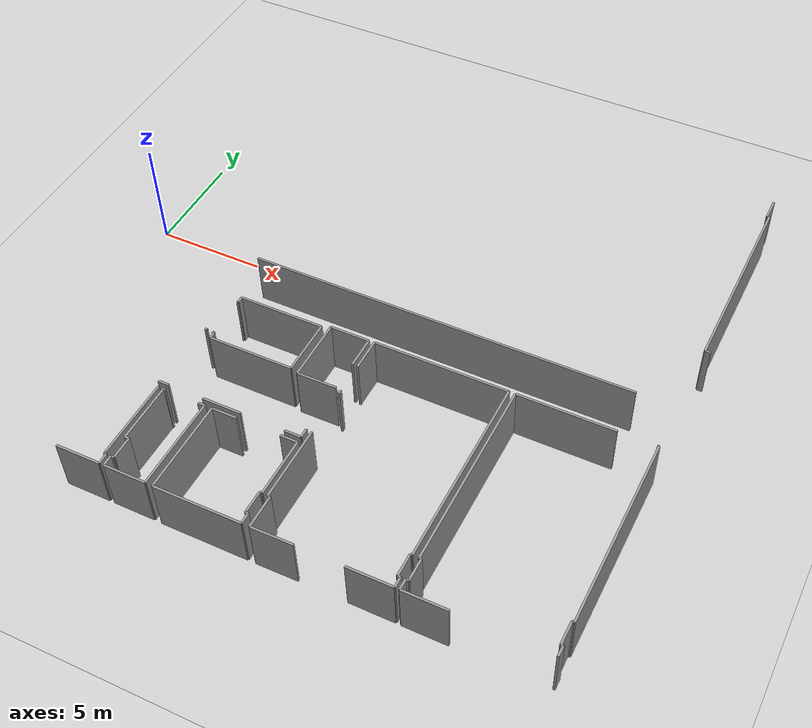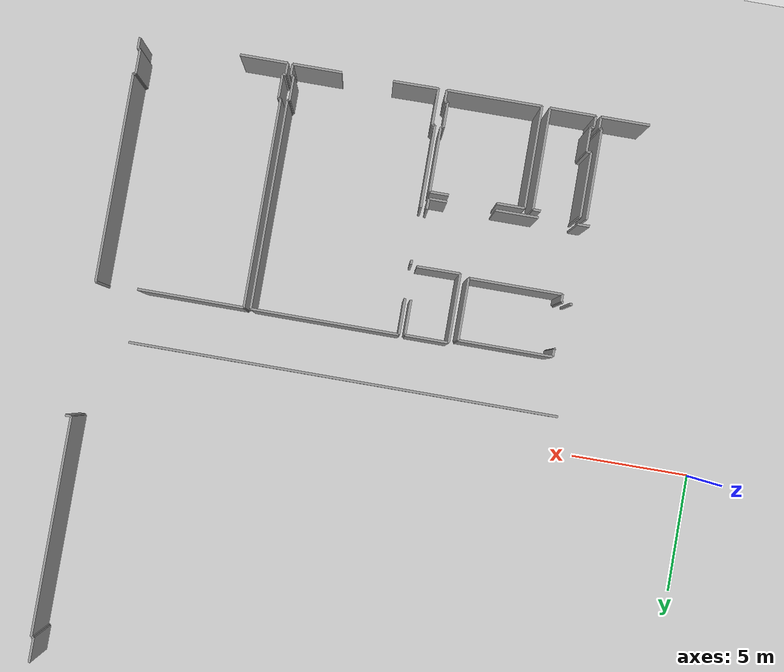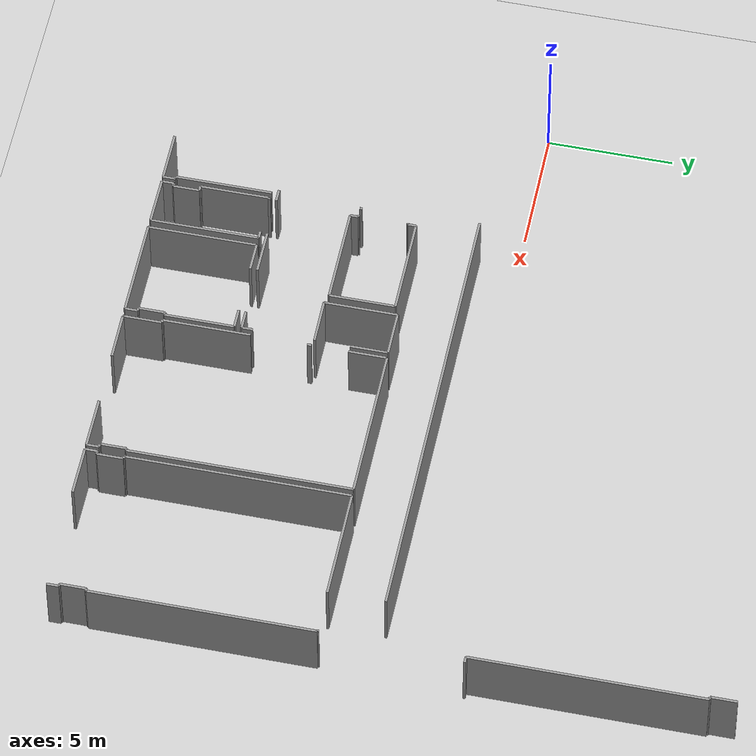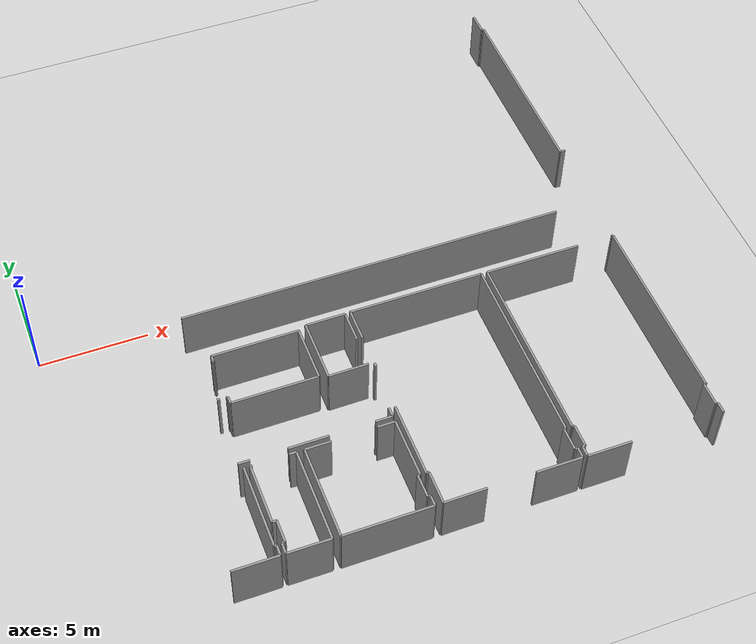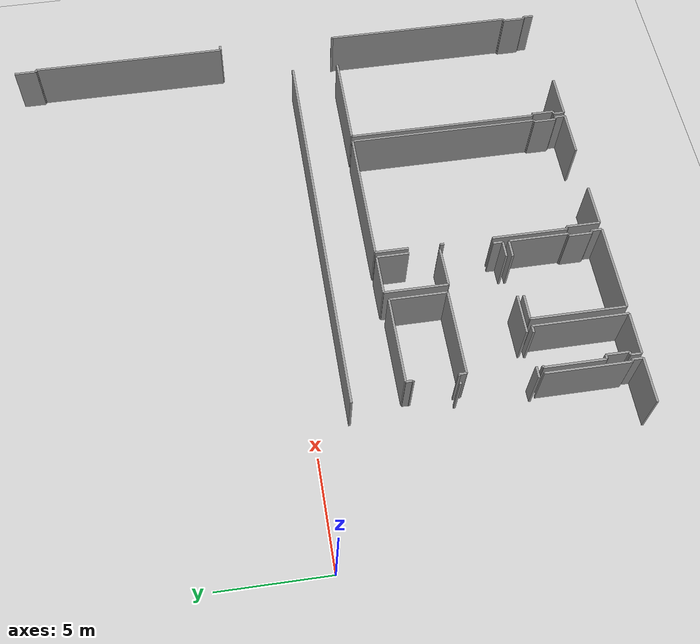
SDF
<sdf version="1.6">
 <world name="default">
  <model name="ground_plane">
   <static>1</static>
   <link name="link">
    <collision name="collision">
     <geometry><plane><normal>0 0 1</normal><size>100 100</size></plane></geometry>
     <surface><friction><ode><mu>100</mu><mu2>50</mu2></ode></friction></surface>
    </collision>
    <visual name="visual">
     <cast_shadows>0</cast_shadows>
     <geometry><plane><normal>0 0 1</normal><size>100 100</size></plane></geometry>
     <material>
      <script><uri>file://media/materials/scripts/gazebo.material</uri><name>Gazebo/Grey</name></script>
     </material>
    </visual>
   </link>
  </model>
  <model name="0510040941_A-40">
   <static>1</static>
   <link name="Wall_170">
    <collision name="Wall_170_Collision">
     <geometry><box><size>1.04735149943 0.1 2.5</size></box></geometry>
     <pose>0.523675749716 0 1.25 0 0 0</pose>
    </collision>
    <visual name="Wall_170_Visual">
     <pose>0.523675749716 0 1.25 0 0 0</pose>
     <geometry><box><size>1.04735149943 0.1 2.5</size></box></geometry>
     <material>
      <script><uri>file://media/materials/scripts/gazebo.material</uri><name>Gazebo/Grey</name></script>
      <ambient>1 1 1 1</ambient>
     </material>
    </visual>
    <pose>84.2989860045 -0.511753850837 0 0 0 -1.57079632679</pose>
   </link>
   <link name="Wall_171">
    <collision name="Wall_171_Collision">
     <geometry><box><size>0.104887344397 0.1 2.5</size></box></geometry>
     <pose>0.0524436721985 0 1.25 0 0 0</pose>
    </collision>
    <visual name="Wall_171_Visual">
     <pose>0.0524436721985 0 1.25 0 0 0</pose>
     <geometry><box><size>0.104887344397 0.1 2.5</size></box></geometry>
     <material>
      <script><uri>file://media/materials/scripts/gazebo.material</uri><name>Gazebo/Grey</name></script>
      <ambient>1 1 1 1</ambient>
     </material>
    </visual>
    <pose>84.2989860045 -1.55910535027 0 0 0 0.0</pose>
   </link>
   <link name="Wall_172">
    <collision name="Wall_172_Collision">
     <geometry><box><size>9.14067206534 0.1 2.5</size></box></geometry>
     <pose>4.57033603267 0 1.25 0 0 0</pose>
    </collision>
    <visual name="Wall_172_Visual">
     <pose>4.57033603267 0 1.25 0 0 0</pose>
     <geometry><box><size>9.14067206534 0.1 2.5</size></box></geometry>
     <material>
      <script><uri>file://media/materials/scripts/gazebo.material</uri><name>Gazebo/Grey</name></script>
      <ambient>1 1 1 1</ambient>
     </material>
    </visual>
    <pose>84.4038733488 -1.55910535027 0 0 0 -1.57079632679</pose>
   </link>
   <link name="Wall_173">
    <collision name="Wall_173_Collision">
     <geometry><box><size>0.247823302239 0.1 2.5</size></box></geometry>
     <pose>0.12391165112 0 1.25 0 0 0</pose>
    </collision>
    <visual name="Wall_173_Visual">
     <pose>0.12391165112 0 1.25 0 0 0</pose>
     <geometry><box><size>0.247823302239 0.1 2.5</size></box></geometry>
     <material>
      <script><uri>file://media/materials/scripts/gazebo.material</uri><name>Gazebo/Grey</name></script>
      <ambient>1 1 1 1</ambient>
     </material>
    </visual>
    <pose>84.4038733488 -10.6997774156 0 0 0 0.0</pose>
   </link>
   <link name="Wall_181">
    <collision name="Wall_181_Collision">
     <geometry><box><size>17.9531114254 0.1 2.5</size></box></geometry>
     <pose>8.97655571268 0 1.25 0 0 0</pose>
    </collision>
    <visual name="Wall_181_Visual">
     <pose>8.97655571268 0 1.25 0 0 0</pose>
     <geometry><box><size>17.9531114254 0.1 2.5</size></box></geometry>
     <material>
      <script><uri>file://media/materials/scripts/gazebo.material</uri><name>Gazebo/Grey</name></script>
      <ambient>1 1 1 1</ambient>
     </material>
    </visual>
    <pose>82.6095007388 -14.1020844299 0 0 0 3.14159265359</pose>
   </link>
   <link name="Wall_193">
    <collision name="Wall_193_Collision">
     <geometry><box><size>0.117443386834 0.1 2.5</size></box></geometry>
     <pose>0.058721693417 0 1.25 0 0 0</pose>
    </collision>
    <visual name="Wall_193_Visual">
     <pose>0.058721693417 0 1.25 0 0 0</pose>
     <geometry><box><size>0.117443386834 0.1 2.5</size></box></geometry>
     <material>
      <script><uri>file://media/materials/scripts/gazebo.material</uri><name>Gazebo/Grey</name></script>
      <ambient>1 1 1 1</ambient>
     </material>
    </visual>
    <pose>64.9444173172 -18.7648151789 0 0 0 3.14159265359</pose>
   </link>
   <link name="Wall_196">
    <collision name="Wall_196_Collision">
     <geometry><box><size>0.441363915963 0.1 2.5</size></box></geometry>
     <pose>0.220681957982 0 1.25 0 0 0</pose>
    </collision>
    <visual name="Wall_196_Visual">
     <pose>0.220681957982 0 1.25 0 0 0</pose>
     <geometry><box><size>0.441363915963 0.1 2.5</size></box></geometry>
     <material>
      <script><uri>file://media/materials/scripts/gazebo.material</uri><name>Gazebo/Grey</name></script>
      <ambient>1 1 1 1</ambient>
     </material>
    </visual>
    <pose>71.4149645197 -21.6430659573 0 0 0 -1.57079632679</pose>
   </link>
   <link name="Wall_197">
    <collision name="Wall_197_Collision">
     <geometry><box><size>0.763255185709 0.1 2.5</size></box></geometry>
     <pose>0.381627592854 0 1.25 0 0 0</pose>
    </collision>
    <visual name="Wall_197_Visual">
     <pose>0.381627592854 0 1.25 0 0 0</pose>
     <geometry><box><size>0.763255185709 0.1 2.5</size></box></geometry>
     <material>
      <script><uri>file://media/materials/scripts/gazebo.material</uri><name>Gazebo/Grey</name></script>
      <ambient>1 1 1 1</ambient>
     </material>
    </visual>
    <pose>71.4149645197 -22.0844298732 0 0 0 3.14159265359</pose>
   </link>
   <link name="Wall_198">
    <collision name="Wall_198_Collision">
     <geometry><box><size>1.80122136049 0.1 2.5</size></box></geometry>
     <pose>0.900610680246 0 1.25 0 0 0</pose>
    </collision>
    <visual name="Wall_198_Visual">
     <pose>0.900610680246 0 1.25 0 0 0</pose>
     <geometry><box><size>1.80122136049 0.1 2.5</size></box></geometry>
     <material>
      <script><uri>file://media/materials/scripts/gazebo.material</uri><name>Gazebo/Grey</name></script>
      <ambient>1 1 1 1</ambient>
     </material>
    </visual>
    <pose>68.615093885 -22.0844298732 0 0 0 3.14159265359</pose>
   </link>
   <link name="Wall_199">
    <collision name="Wall_199_Collision">
     <geometry><box><size>0.507314845935 0.1 2.5</size></box></geometry>
     <pose>0.253657422967 0 1.25 0 0 0</pose>
    </collision>
    <visual name="Wall_199_Visual">
     <pose>0.253657422967 0 1.25 0 0 0</pose>
     <geometry><box><size>0.507314845935 0.1 2.5</size></box></geometry>
     <material>
      <script><uri>file://media/materials/scripts/gazebo.material</uri><name>Gazebo/Grey</name></script>
      <ambient>1 1 1 1</ambient>
     </material>
    </visual>
    <pose>65.1733431414 -22.0844298732 0 0 0 3.14159265359</pose>
   </link>
   <link name="Wall_205">
    <collision name="Wall_205_Collision">
     <geometry><box><size>0.3026133056 0.1 2.5</size></box></geometry>
     <pose>0.1513066528 0 1.25 0 0 0</pose>
    </collision>
    <visual name="Wall_205_Visual">
     <pose>0.1513066528 0 1.25 0 0 0</pose>
     <geometry><box><size>0.3026133056 0.1 2.5</size></box></geometry>
     <material>
      <script><uri>file://media/materials/scripts/gazebo.material</uri><name>Gazebo/Grey</name></script>
      <ambient>1 1 1 1</ambient>
     </material>
    </visual>
    <pose>65.2730305086 -16.8065798736 0 0 0 1.57079632679</pose>
   </link>
   <link name="Wall_206">
    <collision name="Wall_206_Collision">
     <geometry><box><size>3.95781677056 0.1 2.5</size></box></geometry>
     <pose>1.97890838528 0 1.25 0 0 0</pose>
    </collision>
    <visual name="Wall_206_Visual">
     <pose>1.97890838528 0 1.25 0 0 0</pose>
     <geometry><box><size>3.95781677056 0.1 2.5</size></box></geometry>
     <material>
      <script><uri>file://media/materials/scripts/gazebo.material</uri><name>Gazebo/Grey</name></script>
      <ambient>1 1 1 1</ambient>
     </material>
    </visual>
    <pose>65.2730305086 -16.503966568 0 0 0 0.0</pose>
   </link>
   <link name="Wall_207">
    <collision name="Wall_207_Collision">
     <geometry><box><size>2.60633002099 0.1 2.5</size></box></geometry>
     <pose>1.3031650105 0 1.25 0 0 0</pose>
    </collision>
    <visual name="Wall_207_Visual">
     <pose>1.3031650105 0 1.25 0 0 0</pose>
     <geometry><box><size>2.60633002099 0.1 2.5</size></box></geometry>
     <material>
      <script><uri>file://media/materials/scripts/gazebo.material</uri><name>Gazebo/Grey</name></script>
      <ambient>1 1 1 1</ambient>
     </material>
    </visual>
    <pose>69.2308472792 -16.503966568 0 0 0 -1.57079632679</pose>
   </link>
   <link name="Wall_208">
    <collision name="Wall_208_Collision">
     <geometry><box><size>3.93194371342 0.1 2.5</size></box></geometry>
     <pose>1.96597185671 0 1.25 0 0 0</pose>
    </collision>
    <visual name="Wall_208_Visual">
     <pose>1.96597185671 0 1.25 0 0 0</pose>
     <geometry><box><size>3.93194371342 0.1 2.5</size></box></geometry>
     <material>
      <script><uri>file://media/materials/scripts/gazebo.material</uri><name>Gazebo/Grey</name></script>
      <ambient>1 1 1 1</ambient>
     </material>
    </visual>
    <pose>69.2308472792 -19.1102965889 0 0 0 3.14159265359</pose>
   </link>
   <link name="Wall_209">
    <collision name="Wall_209_Collision">
     <geometry><box><size>0.316564463863 0.1 2.5</size></box></geometry>
     <pose>0.158282231932 0 1.25 0 0 0</pose>
    </collision>
    <visual name="Wall_209_Visual">
     <pose>0.158282231932 0 1.25 0 0 0</pose>
     <geometry><box><size>0.316564463863 0.1 2.5</size></box></geometry>
     <material>
      <script><uri>file://media/materials/scripts/gazebo.material</uri><name>Gazebo/Grey</name></script>
      <ambient>1 1 1 1</ambient>
     </material>
    </visual>
    <pose>65.2989035658 -19.1102965889 0 0 0 1.57079632679</pose>
   </link>
   <link name="Wall_210">
    <collision name="Wall_210_Collision">
     <geometry><box><size>0.0862435238089 0.1 2.5</size></box></geometry>
     <pose>0.0431217619045 0 1.25 0 0 0</pose>
    </collision>
    <visual name="Wall_210_Visual">
     <pose>0.0431217619045 0 1.25 0 0 0</pose>
     <geometry><box><size>0.0862435238089 0.1 2.5</size></box></geometry>
     <material>
      <script><uri>file://media/materials/scripts/gazebo.material</uri><name>Gazebo/Grey</name></script>
      <ambient>1 1 1 1</ambient>
     </material>
    </visual>
    <pose>65.2989035658 -18.7937321251 0 0 0 3.14159265359</pose>
   </link>
   <link name="Wall_211">
    <collision name="Wall_211_Collision">
     <geometry><box><size>0.0671038954753 0.1 2.5</size></box></geometry>
     <pose>0.0335519477377 0 1.25 0 0 0</pose>
    </collision>
    <visual name="Wall_211_Visual">
     <pose>0.0335519477377 0 1.25 0 0 0</pose>
     <geometry><box><size>0.0671038954753 0.1 2.5</size></box></geometry>
     <material>
      <script><uri>file://media/materials/scripts/gazebo.material</uri><name>Gazebo/Grey</name></script>
      <ambient>1 1 1 1</ambient>
     </material>
    </visual>
    <pose>65.212660042 -16.8358773059 0 0 0 0.451813841898</pose>
   </link>
   <link name="Wall_230">
    <collision name="Wall_230_Collision">
     <geometry><box><size>3.83923192532 0.1 2.5</size></box></geometry>
     <pose>1.91961596266 0 1.25 0 0 0</pose>
    </collision>
    <visual name="Wall_230_Visual">
     <pose>1.91961596266 0 1.25 0 0 0</pose>
     <geometry><box><size>3.83923192532 0.1 2.5</size></box></geometry>
     <material>
      <script><uri>file://media/materials/scripts/gazebo.material</uri><name>Gazebo/Grey</name></script>
      <ambient>1 1 1 1</ambient>
     </material>
    </visual>
    <pose>64.8380080283 -22.3350434071 0 0 0 -1.57079632679</pose>
   </link>
   <link name="Wall_231">
    <collision name="Wall_231_Collision">
     <geometry><box><size>0.100194682072 0.1 2.5</size></box></geometry>
     <pose>0.0500973410361 0 1.25 0 0 0</pose>
    </collision>
    <visual name="Wall_231_Visual">
     <pose>0.0500973410361 0 1.25 0 0 0</pose>
     <geometry><box><size>0.100194682072 0.1 2.5</size></box></geometry>
     <material>
      <script><uri>file://media/materials/scripts/gazebo.material</uri><name>Gazebo/Grey</name></script>
      <ambient>1 1 1 1</ambient>
     </material>
    </visual>
    <pose>64.8380080283 -26.1742753324 0 0 0 0.0</pose>
   </link>
   <link name="Wall_232">
    <collision name="Wall_232_Collision">
     <geometry><box><size>0.489178340193 0.1 2.5</size></box></geometry>
     <pose>0.244589170096 0 1.25 0 0 0</pose>
    </collision>
    <visual name="Wall_232_Visual">
     <pose>0.244589170096 0 1.25 0 0 0</pose>
     <geometry><box><size>0.489178340193 0.1 2.5</size></box></geometry>
     <material>
      <script><uri>file://media/materials/scripts/gazebo.material</uri><name>Gazebo/Grey</name></script>
      <ambient>1 1 1 1</ambient>
     </material>
    </visual>
    <pose>64.9382027103 -26.1742753324 0 0 0 -1.57079632679</pose>
   </link>
   <link name="Wall_233">
    <collision name="Wall_233_Collision">
     <geometry><box><size>2.04397151427 0.1 2.5</size></box></geometry>
     <pose>1.02198575714 0 1.25 0 0 0</pose>
    </collision>
    <visual name="Wall_233_Visual">
     <pose>1.02198575714 0 1.25 0 0 0</pose>
     <geometry><box><size>2.04397151427 0.1 2.5</size></box></geometry>
     <material>
      <script><uri>file://media/materials/scripts/gazebo.material</uri><name>Gazebo/Grey</name></script>
      <ambient>1 1 1 1</ambient>
     </material>
    </visual>
    <pose>64.9382027103 -26.6634536726 0 0 0 3.14159265359</pose>
   </link>
   <link name="Wall_237">
    <collision name="Wall_237_Collision">
     <geometry><box><size>0.493110030249 0.1 2.5</size></box></geometry>
     <pose>0.246555015124 0 1.25 0 0 0</pose>
    </collision>
    <visual name="Wall_237_Visual">
     <pose>0.246555015124 0 1.25 0 0 0</pose>
     <geometry><box><size>0.493110030249 0.1 2.5</size></box></geometry>
     <material>
      <script><uri>file://media/materials/scripts/gazebo.material</uri><name>Gazebo/Grey</name></script>
      <ambient>1 1 1 1</ambient>
     </material>
    </visual>
    <pose>65.1605334416 -26.6616780707 0 0 0 1.57079632679</pose>
   </link>
   <link name="Wall_238">
    <collision name="Wall_238_Collision">
     <geometry><box><size>0.137735980671 0.1 2.5</size></box></geometry>
     <pose>0.0688679903356 0 1.25 0 0 0</pose>
    </collision>
    <visual name="Wall_238_Visual">
     <pose>0.0688679903356 0 1.25 0 0 0</pose>
     <geometry><box><size>0.137735980671 0.1 2.5</size></box></geometry>
     <material>
      <script><uri>file://media/materials/scripts/gazebo.material</uri><name>Gazebo/Grey</name></script>
      <ambient>1 1 1 1</ambient>
     </material>
    </visual>
    <pose>65.1605334416 -26.1685680404 0 0 0 0.0</pose>
   </link>
   <link name="Wall_239">
    <collision name="Wall_239_Collision">
     <geometry><box><size>1.03695154509 0.1 2.5</size></box></geometry>
     <pose>0.518475772545 0 1.25 0 0 0</pose>
    </collision>
    <visual name="Wall_239_Visual">
     <pose>0.518475772545 0 1.25 0 0 0</pose>
     <geometry><box><size>1.03695154509 0.1 2.5</size></box></geometry>
     <material>
      <script><uri>file://media/materials/scripts/gazebo.material</uri><name>Gazebo/Grey</name></script>
      <ambient>1 1 1 1</ambient>
     </material>
    </visual>
    <pose>65.2982694222 -26.1685680404 0 0 0 1.57079632679</pose>
   </link>
   <link name="Wall_240">
    <collision name="Wall_240_Collision">
     <geometry><box><size>0.195823530531 0.1 2.5</size></box></geometry>
     <pose>0.0979117652654 0 1.25 0 0 0</pose>
    </collision>
    <visual name="Wall_240_Visual">
     <pose>0.0979117652654 0 1.25 0 0 0</pose>
     <geometry><box><size>0.195823530531 0.1 2.5</size></box></geometry>
     <material>
      <script><uri>file://media/materials/scripts/gazebo.material</uri><name>Gazebo/Grey</name></script>
      <ambient>1 1 1 1</ambient>
     </material>
    </visual>
    <pose>65.2982694222 -25.1316164953 0 0 0 3.14159265359</pose>
   </link>
   <link name="Wall_241">
    <collision name="Wall_241_Collision">
     <geometry><box><size>2.76283665096 0.1 2.5</size></box></geometry>
     <pose>1.38141832548 0 1.25 0 0 0</pose>
    </collision>
    <visual name="Wall_241_Visual">
     <pose>1.38141832548 0 1.25 0 0 0</pose>
     <geometry><box><size>2.76283665096 0.1 2.5</size></box></geometry>
     <material>
      <script><uri>file://media/materials/scripts/gazebo.material</uri><name>Gazebo/Grey</name></script>
      <ambient>1 1 1 1</ambient>
     </material>
    </visual>
    <pose>65.1024458917 -25.1316164953 0 0 0 1.57079632679</pose>
   </link>
   <link name="Wall_242">
    <collision name="Wall_242_Collision">
     <geometry><box><size>0.0830728060218 0.1 2.5</size></box></geometry>
     <pose>0.0415364030109 0 1.25 0 0 0</pose>
    </collision>
    <visual name="Wall_242_Visual">
     <pose>0.0415364030109 0 1.25 0 0 0</pose>
     <geometry><box><size>0.0830728060218 0.1 2.5</size></box></geometry>
     <material>
      <script><uri>file://media/materials/scripts/gazebo.material</uri><name>Gazebo/Grey</name></script>
      <ambient>1 1 1 1</ambient>
     </material>
    </visual>
    <pose>65.1024458917 -22.3687798444 0 0 0 0.0</pose>
   </link>
   <link name="Wall_243">
    <collision name="Wall_243_Collision">
     <geometry><box><size>0.321637612323 0.1 2.5</size></box></geometry>
     <pose>0.160818806161 0 1.25 0 0 0</pose>
    </collision>
    <visual name="Wall_243_Visual">
     <pose>0.160818806161 0 1.25 0 0 0</pose>
     <geometry><box><size>0.321637612323 0.1 2.5</size></box></geometry>
     <material>
      <script><uri>file://media/materials/scripts/gazebo.material</uri><name>Gazebo/Grey</name></script>
      <ambient>1 1 1 1</ambient>
     </material>
    </visual>
    <pose>66.7674532161 -22.3687798444 0 0 0 0.0</pose>
   </link>
   <link name="Wall_244">
    <collision name="Wall_244_Collision">
     <geometry><box><size>4.29847868961 0.1 2.5</size></box></geometry>
     <pose>2.1492393448 0 1.25 0 0 0</pose>
    </collision>
    <visual name="Wall_244_Visual">
     <pose>2.1492393448 0 1.25 0 0 0</pose>
     <geometry><box><size>4.29847868961 0.1 2.5</size></box></geometry>
     <material>
      <script><uri>file://media/materials/scripts/gazebo.material</uri><name>Gazebo/Grey</name></script>
      <ambient>1 1 1 1</ambient>
     </material>
    </visual>
    <pose>67.0890908284 -22.3687798444 0 0 0 -1.57079632679</pose>
   </link>
   <link name="Wall_245">
    <collision name="Wall_245_Collision">
     <geometry><box><size>1.9285654606 0.1 2.5</size></box></geometry>
     <pose>0.964282730302 0 1.25 0 0 0</pose>
    </collision>
    <visual name="Wall_245_Visual">
     <pose>0.964282730302 0 1.25 0 0 0</pose>
     <geometry><box><size>1.9285654606 0.1 2.5</size></box></geometry>
     <material>
      <script><uri>file://media/materials/scripts/gazebo.material</uri><name>Gazebo/Grey</name></script>
      <ambient>1 1 1 1</ambient>
     </material>
    </visual>
    <pose>67.0890908284 -26.667258534 0 0 0 3.13869906703</pose>
   </link>
   <link name="Wall_246">
    <collision name="Wall_246_Collision">
     <geometry><box><size>4.31242984787 0.1 2.5</size></box></geometry>
     <pose>2.15621492393 0 1.25 0 0 0</pose>
    </collision>
    <visual name="Wall_246_Visual">
     <pose>2.15621492393 0 1.25 0 0 0</pose>
     <geometry><box><size>4.31242984787 0.1 2.5</size></box></geometry>
     <material>
      <script><uri>file://media/materials/scripts/gazebo.material</uri><name>Gazebo/Grey</name></script>
      <ambient>1 1 1 1</ambient>
     </material>
    </visual>
    <pose>67.4358405256 -26.6812096923 0 0 0 1.57079632679</pose>
   </link>
   <link name="Wall_247">
    <collision name="Wall_247_Collision">
     <geometry><box><size>1.16910706246 0.1 2.5</size></box></geometry>
     <pose>0.584553531228 0 1.25 0 0 0</pose>
    </collision>
    <visual name="Wall_247_Visual">
     <pose>0.584553531228 0 1.25 0 0 0</pose>
     <geometry><box><size>1.16910706246 0.1 2.5</size></box></geometry>
     <material>
      <script><uri>file://media/materials/scripts/gazebo.material</uri><name>Gazebo/Grey</name></script>
      <ambient>1 1 1 1</ambient>
     </material>
    </visual>
    <pose>67.4358405256 -22.3687798444 0 0 0 0.0</pose>
   </link>
   <link name="Wall_248">
    <collision name="Wall_248_Collision">
     <geometry><box><size>0.797625766521 0.1 2.5</size></box></geometry>
     <pose>0.398812883261 0 1.25 0 0 0</pose>
    </collision>
    <visual name="Wall_248_Visual">
     <pose>0.398812883261 0 1.25 0 0 0</pose>
     <geometry><box><size>0.797625766521 0.1 2.5</size></box></geometry>
     <material>
      <script><uri>file://media/materials/scripts/gazebo.material</uri><name>Gazebo/Grey</name></script>
      <ambient>1 1 1 1</ambient>
     </material>
    </visual>
    <pose>70.6281191936 -22.3687798444 0 0 0 0.0</pose>
   </link>
   <link name="Wall_249">
    <collision name="Wall_249_Collision">
     <geometry><box><size>2.74863183527 0.1 2.5</size></box></geometry>
     <pose>1.37431591764 0 1.25 0 0 0</pose>
    </collision>
    <visual name="Wall_249_Visual">
     <pose>1.37431591764 0 1.25 0 0 0</pose>
     <geometry><box><size>2.74863183527 0.1 2.5</size></box></geometry>
     <material>
      <script><uri>file://media/materials/scripts/gazebo.material</uri><name>Gazebo/Grey</name></script>
      <ambient>1 1 1 1</ambient>
     </material>
    </visual>
    <pose>71.4257449601 -22.3687798444 0 0 0 -1.57079632679</pose>
   </link>
   <link name="Wall_250">
    <collision name="Wall_250_Collision">
     <geometry><box><size>0.108184890896 0.1 2.5</size></box></geometry>
     <pose>0.0540924454478 0 1.25 0 0 0</pose>
    </collision>
    <visual name="Wall_250_Visual">
     <pose>0.0540924454478 0 1.25 0 0 0</pose>
     <geometry><box><size>0.108184890896 0.1 2.5</size></box></geometry>
     <material>
      <script><uri>file://media/materials/scripts/gazebo.material</uri><name>Gazebo/Grey</name></script>
      <ambient>1 1 1 1</ambient>
     </material>
    </visual>
    <pose>71.4257449601 -25.1174116797 0 0 0 3.14159265359</pose>
   </link>
   <link name="Wall_251">
    <collision name="Wall_251_Collision">
     <geometry><box><size>1.05876608347 0.1 2.5</size></box></geometry>
     <pose>0.529383041733 0 1.25 0 0 0</pose>
    </collision>
    <visual name="Wall_251_Visual">
     <pose>0.529383041733 0 1.25 0 0 0</pose>
     <geometry><box><size>1.05876608347 0.1 2.5</size></box></geometry>
     <material>
      <script><uri>file://media/materials/scripts/gazebo.material</uri><name>Gazebo/Grey</name></script>
      <ambient>1 1 1 1</ambient>
     </material>
    </visual>
    <pose>71.3175600692 -25.1174116797 0 0 0 -1.57079632679</pose>
   </link>
   <link name="Wall_252">
    <collision name="Wall_252_Collision">
     <geometry><box><size>0.120867762044 0.1 2.5</size></box></geometry>
     <pose>0.060433881022 0 1.25 0 0 0</pose>
    </collision>
    <visual name="Wall_252_Visual">
     <pose>0.060433881022 0 1.25 0 0 0</pose>
     <geometry><box><size>0.120867762044 0.1 2.5</size></box></geometry>
     <material>
      <script><uri>file://media/materials/scripts/gazebo.material</uri><name>Gazebo/Grey</name></script>
      <ambient>1 1 1 1</ambient>
     </material>
    </visual>
    <pose>71.3175600692 -26.1761777631 0 0 0 0.0</pose>
   </link>
   <link name="Wall_253">
    <collision name="Wall_253_Collision">
     <geometry><box><size>0.49577343319 0.1 2.5</size></box></geometry>
     <pose>0.247886716595 0 1.25 0 0 0</pose>
    </collision>
    <visual name="Wall_253_Visual">
     <pose>0.247886716595 0 1.25 0 0 0</pose>
     <geometry><box><size>0.49577343319 0.1 2.5</size></box></geometry>
     <material>
      <script><uri>file://media/materials/scripts/gazebo.material</uri><name>Gazebo/Grey</name></script>
      <ambient>1 1 1 1</ambient>
     </material>
    </visual>
    <pose>71.4384278313 -26.1761777631 0 0 0 -1.57079632679</pose>
   </link>
   <link name="Wall_254">
    <collision name="Wall_254_Collision">
     <geometry><box><size>4.00259801374 0.1 2.5</size></box></geometry>
     <pose>2.00129900687 0 1.25 0 0 0</pose>
    </collision>
    <visual name="Wall_254_Visual">
     <pose>2.00129900687 0 1.25 0 0 0</pose>
     <geometry><box><size>4.00259801374 0.1 2.5</size></box></geometry>
     <material>
      <script><uri>file://media/materials/scripts/gazebo.material</uri><name>Gazebo/Grey</name></script>
      <ambient>1 1 1 1</ambient>
     </material>
    </visual>
    <pose>71.4384278313 -26.6719511963 0 0 0 -3.13927952992</pose>
   </link>
   <link name="Wall_255">
    <collision name="Wall_255_Collision">
     <geometry><box><size>1.53437375153 0.1 2.5</size></box></geometry>
     <pose>0.767186875765 0 1.25 0 0 0</pose>
    </collision>
    <visual name="Wall_255_Visual">
     <pose>0.767186875765 0 1.25 0 0 0</pose>
     <geometry><box><size>1.53437375153 0.1 2.5</size></box></geometry>
     <material>
      <script><uri>file://media/materials/scripts/gazebo.material</uri><name>Gazebo/Grey</name></script>
      <ambient>1 1 1 1</ambient>
     </material>
    </visual>
    <pose>71.7984945432 -26.6718243676 0 0 0 1.57079632679</pose>
   </link>
   <link name="Wall_256">
    <collision name="Wall_256_Collision">
     <geometry><box><size>0.116682414565 0.1 2.5</size></box></geometry>
     <pose>0.0583412072825 0 1.25 0 0 0</pose>
    </collision>
    <visual name="Wall_256_Visual">
     <pose>0.0583412072825 0 1.25 0 0 0</pose>
     <geometry><box><size>0.116682414565 0.1 2.5</size></box></geometry>
     <material>
      <script><uri>file://media/materials/scripts/gazebo.material</uri><name>Gazebo/Grey</name></script>
      <ambient>1 1 1 1</ambient>
     </material>
    </visual>
    <pose>71.7984945432 -25.1374506161 0 0 0 3.14159265359</pose>
   </link>
   <link name="Wall_257">
    <collision name="Wall_257_Collision">
     <geometry><box><size>3.46660917098 0.1 2.5</size></box></geometry>
     <pose>1.73330458549 0 1.25 0 0 0</pose>
    </collision>
    <visual name="Wall_257_Visual">
     <pose>1.73330458549 0 1.25 0 0 0</pose>
     <geometry><box><size>3.46660917098 0.1 2.5</size></box></geometry>
     <material>
      <script><uri>file://media/materials/scripts/gazebo.material</uri><name>Gazebo/Grey</name></script>
      <ambient>1 1 1 1</ambient>
     </material>
    </visual>
    <pose>71.6818121286 -25.1374506161 0 0 0 1.57079632679</pose>
   </link>
   <link name="Wall_258">
    <collision name="Wall_258_Collision">
     <geometry><box><size>0.182252858402 0.1 2.5</size></box></geometry>
     <pose>0.091126429201 0 1.25 0 0 0</pose>
    </collision>
    <visual name="Wall_258_Visual">
     <pose>0.091126429201 0 1.25 0 0 0</pose>
     <geometry><box><size>0.182252858402 0.1 2.5</size></box></geometry>
     <material>
      <script><uri>file://media/materials/scripts/gazebo.material</uri><name>Gazebo/Grey</name></script>
      <ambient>1 1 1 1</ambient>
     </material>
    </visual>
    <pose>71.6818121286 -19.4555243416 0 0 0 1.57079632679</pose>
   </link>
   <link name="Wall_259">
    <collision name="Wall_259_Collision">
     <geometry><box><size>1.51471530125 0.1 2.5</size></box></geometry>
     <pose>0.757357650625 0 1.25 0 0 0</pose>
    </collision>
    <visual name="Wall_259_Visual">
     <pose>0.757357650625 0 1.25 0 0 0</pose>
     <geometry><box><size>1.51471530125 0.1 2.5</size></box></geometry>
     <material>
      <script><uri>file://media/materials/scripts/gazebo.material</uri><name>Gazebo/Grey</name></script>
      <ambient>1 1 1 1</ambient>
     </material>
    </visual>
    <pose>71.6818121286 -17.8342729227 0 0 0 1.57079632679</pose>
   </link>
   <link name="Wall_260">
    <collision name="Wall_260_Collision">
     <geometry><box><size>6.21853855276 0.1 2.5</size></box></geometry>
     <pose>3.10926927638 0 1.25 0 0 0</pose>
    </collision>
    <visual name="Wall_260_Visual">
     <pose>3.10926927638 0 1.25 0 0 0</pose>
     <geometry><box><size>6.21853855276 0.1 2.5</size></box></geometry>
     <material>
      <script><uri>file://media/materials/scripts/gazebo.material</uri><name>Gazebo/Grey</name></script>
      <ambient>1 1 1 1</ambient>
     </material>
    </visual>
    <pose>71.6818121286 -16.3195576215 0 0 0 0.0</pose>
   </link>
   <link name="Wall_261">
    <collision name="Wall_261_Collision">
     <geometry><box><size>8.80482963733 0.1 2.5</size></box></geometry>
     <pose>4.40241481867 0 1.25 0 0 0</pose>
    </collision>
    <visual name="Wall_261_Visual">
     <pose>4.40241481867 0 1.25 0 0 0</pose>
     <geometry><box><size>8.80482963733 0.1 2.5</size></box></geometry>
     <material>
      <script><uri>file://media/materials/scripts/gazebo.material</uri><name>Gazebo/Grey</name></script>
      <ambient>1 1 1 1</ambient>
     </material>
    </visual>
    <pose>77.9003506814 -16.3195576215 0 0 0 -1.57079632679</pose>
   </link>
   <link name="Wall_262">
    <collision name="Wall_262_Collision">
     <geometry><box><size>0.085989866386 0.1 2.5</size></box></geometry>
     <pose>0.042994933193 0 1.25 0 0 0</pose>
    </collision>
    <visual name="Wall_262_Visual">
     <pose>0.042994933193 0 1.25 0 0 0</pose>
     <geometry><box><size>0.085989866386 0.1 2.5</size></box></geometry>
     <material>
      <script><uri>file://media/materials/scripts/gazebo.material</uri><name>Gazebo/Grey</name></script>
      <ambient>1 1 1 1</ambient>
     </material>
    </visual>
    <pose>77.9003506814 -25.1243872588 0 0 0 3.14159265359</pose>
   </link>
   <link name="Wall_263">
    <collision name="Wall_263_Collision">
     <geometry><box><size>1.03695154509 0.1 2.5</size></box></geometry>
     <pose>0.518475772545 0 1.25 0 0 0</pose>
    </collision>
    <visual name="Wall_263_Visual">
     <pose>0.518475772545 0 1.25 0 0 0</pose>
     <geometry><box><size>1.03695154509 0.1 2.5</size></box></geometry>
     <material>
      <script><uri>file://media/materials/scripts/gazebo.material</uri><name>Gazebo/Grey</name></script>
      <ambient>1 1 1 1</ambient>
     </material>
    </visual>
    <pose>77.814360815 -25.1243872588 0 0 0 -1.57079632679</pose>
   </link>
   <link name="Wall_264">
    <collision name="Wall_264_Collision">
     <geometry><box><size>0.130506744117 0.1 2.5</size></box></geometry>
     <pose>0.0652533720584 0 1.25 0 0 0</pose>
    </collision>
    <visual name="Wall_264_Visual">
     <pose>0.0652533720584 0 1.25 0 0 0</pose>
     <geometry><box><size>0.130506744117 0.1 2.5</size></box></geometry>
     <material>
      <script><uri>file://media/materials/scripts/gazebo.material</uri><name>Gazebo/Grey</name></script>
      <ambient>1 1 1 1</ambient>
     </material>
    </visual>
    <pose>77.814360815 -26.1613388039 0 0 0 0.0</pose>
   </link>
   <link name="Wall_265">
    <collision name="Wall_265_Collision">
     <geometry><box><size>0.493110030249 0.1 2.5</size></box></geometry>
     <pose>0.246555015124 0 1.25 0 0 0</pose>
    </collision>
    <visual name="Wall_265_Visual">
     <pose>0.246555015124 0 1.25 0 0 0</pose>
     <geometry><box><size>0.493110030249 0.1 2.5</size></box></geometry>
     <material>
      <script><uri>file://media/materials/scripts/gazebo.material</uri><name>Gazebo/Grey</name></script>
      <ambient>1 1 1 1</ambient>
     </material>
    </visual>
    <pose>77.9448675591 -26.1613388039 0 0 0 -1.57079632679</pose>
   </link>
   <link name="Wall_266">
    <collision name="Wall_266_Collision">
     <geometry><box><size>2.07390309018 0.1 2.5</size></box></geometry>
     <pose>1.03695154509 0 1.25 0 0 0</pose>
    </collision>
    <visual name="Wall_266_Visual">
     <pose>1.03695154509 0 1.25 0 0 0</pose>
     <geometry><box><size>2.07390309018 0.1 2.5</size></box></geometry>
     <material>
      <script><uri>file://media/materials/scripts/gazebo.material</uri><name>Gazebo/Grey</name></script>
      <ambient>1 1 1 1</ambient>
     </material>
    </visual>
    <pose>77.9448675591 -26.6544488341 0 0 0 3.14159265359</pose>
   </link>
   <link name="Wall_267">
    <collision name="Wall_267_Collision">
     <geometry><box><size>1.91100718972 0.1 2.5</size></box></geometry>
     <pose>0.955503594858 0 1.25 0 0 0</pose>
    </collision>
    <visual name="Wall_267_Visual">
     <pose>0.955503594858 0 1.25 0 0 0</pose>
     <geometry><box><size>1.91100718972 0.1 2.5</size></box></geometry>
     <material>
      <script><uri>file://media/materials/scripts/gazebo.material</uri><name>Gazebo/Grey</name></script>
      <ambient>1 1 1 1</ambient>
     </material>
    </visual>
    <pose>73.7094227391 -26.6544488341 0 0 0 -3.13250018498</pose>
   </link>
   <link name="Wall_268">
    <collision name="Wall_268_Collision">
     <geometry><box><size>2.8935970525 0.1 2.5</size></box></geometry>
     <pose>1.44679852625 0 1.25 0 0 0</pose>
    </collision>
    <visual name="Wall_268_Visual">
     <pose>1.44679852625 0 1.25 0 0 0</pose>
     <geometry><box><size>2.8935970525 0.1 2.5</size></box></geometry>
     <material>
      <script><uri>file://media/materials/scripts/gazebo.material</uri><name>Gazebo/Grey</name></script>
      <ambient>1 1 1 1</ambient>
     </material>
    </visual>
    <pose>69.6052456355 -19.2331936104 0 0 0 1.57079632679</pose>
   </link>
   <link name="Wall_269">
    <collision name="Wall_269_Collision">
     <geometry><box><size>1.82633344537 0.1 2.5</size></box></geometry>
     <pose>0.913166722683 0 1.25 0 0 0</pose>
    </collision>
    <visual name="Wall_269_Visual">
     <pose>0.913166722683 0 1.25 0 0 0</pose>
     <geometry><box><size>1.82633344537 0.1 2.5</size></box></geometry>
     <material>
      <script><uri>file://media/materials/scripts/gazebo.material</uri><name>Gazebo/Grey</name></script>
      <ambient>1 1 1 1</ambient>
     </material>
    </visual>
    <pose>69.6052456355 -16.3395965579 0 0 0 0.0</pose>
   </link>
   <link name="Wall_270">
    <collision name="Wall_270_Collision">
     <geometry><box><size>1.47260816904 0.1 2.5</size></box></geometry>
     <pose>0.736304084519 0 1.25 0 0 0</pose>
    </collision>
    <visual name="Wall_270_Visual">
     <pose>0.736304084519 0 1.25 0 0 0</pose>
     <geometry><box><size>1.47260816904 0.1 2.5</size></box></geometry>
     <material>
      <script><uri>file://media/materials/scripts/gazebo.material</uri><name>Gazebo/Grey</name></script>
      <ambient>1 1 1 1</ambient>
     </material>
    </visual>
    <pose>71.4315790809 -16.3395965579 0 0 0 -1.57079632679</pose>
   </link>
   <link name="Wall_271">
    <collision name="Wall_271_Collision">
     <geometry><box><size>1.82640901698 0.1 2.5</size></box></geometry>
     <pose>0.91320450849 0 1.25 0 0 0</pose>
    </collision>
    <visual name="Wall_271_Visual">
     <pose>0.91320450849 0 1.25 0 0 0</pose>
     <geometry><box><size>1.82640901698 0.1 2.5</size></box></geometry>
     <material>
      <script><uri>file://media/materials/scripts/gazebo.material</uri><name>Gazebo/Grey</name></script>
      <ambient>1 1 1 1</ambient>
     </material>
    </visual>
    <pose>71.4315790809 -19.2165790492 0 0 0 -3.13249568232</pose>
   </link>
   <link name="Wall_272">
    <collision name="Wall_272_Collision">
     <geometry><box><size>8.80533695218 0.1 2.5</size></box></geometry>
     <pose>4.40266847609 0 1.25 0 0 0</pose>
    </collision>
    <visual name="Wall_272_Visual">
     <pose>4.40266847609 0 1.25 0 0 0</pose>
     <geometry><box><size>8.80533695218 0.1 2.5</size></box></geometry>
     <material>
      <script><uri>file://media/materials/scripts/gazebo.material</uri><name>Gazebo/Grey</name></script>
      <ambient>1 1 1 1</ambient>
     </material>
    </visual>
    <pose>78.1867299119 -25.1264165182 0 0 0 1.57079632679</pose>
   </link>
   <link name="Wall_273">
    <collision name="Wall_273_Collision">
     <geometry><box><size>4.46462430165 0.1 2.5</size></box></geometry>
     <pose>2.23231215082 0 1.25 0 0 0</pose>
    </collision>
    <visual name="Wall_273_Visual">
     <pose>2.23231215082 0 1.25 0 0 0</pose>
     <geometry><box><size>4.46462430165 0.1 2.5</size></box></geometry>
     <material>
      <script><uri>file://media/materials/scripts/gazebo.material</uri><name>Gazebo/Grey</name></script>
      <ambient>1 1 1 1</ambient>
     </material>
    </visual>
    <pose>78.1867299119 -16.321079566 0 0 0 0.0</pose>
   </link>
   <link name="Wall_274">
    <collision name="Wall_274_Collision">
     <geometry><box><size>0.0725460229687 0.1 2.5</size></box></geometry>
     <pose>0.0362730114843 0 1.25 0 0 0</pose>
    </collision>
    <visual name="Wall_274_Visual">
     <pose>0.0362730114843 0 1.25 0 0 0</pose>
     <geometry><box><size>0.0725460229687 0.1 2.5</size></box></geometry>
     <material>
      <script><uri>file://media/materials/scripts/gazebo.material</uri><name>Gazebo/Grey</name></script>
      <ambient>1 1 1 1</ambient>
     </material>
    </visual>
    <pose>84.3333565853 -16.321079566 0 0 0 0.0</pose>
   </link>
   <link name="Wall_275">
    <collision name="Wall_275_Collision">
     <geometry><box><size>8.82081005498 0.1 2.5</size></box></geometry>
     <pose>4.41040502749 0 1.25 0 0 0</pose>
    </collision>
    <visual name="Wall_275_Visual">
     <pose>4.41040502749 0 1.25 0 0 0</pose>
     <geometry><box><size>8.82081005498 0.1 2.5</size></box></geometry>
     <material>
      <script><uri>file://media/materials/scripts/gazebo.material</uri><name>Gazebo/Grey</name></script>
      <ambient>1 1 1 1</ambient>
     </material>
    </visual>
    <pose>84.4059026082 -16.321079566 0 0 0 -1.57079632679</pose>
   </link>
   <link name="Wall_276">
    <collision name="Wall_276_Collision">
     <geometry><box><size>0.097277621708 0.1 2.5</size></box></geometry>
     <pose>0.048638810854 0 1.25 0 0 0</pose>
    </collision>
    <visual name="Wall_276_Visual">
     <pose>0.048638810854 0 1.25 0 0 0</pose>
     <geometry><box><size>0.097277621708 0.1 2.5</size></box></geometry>
     <material>
      <script><uri>file://media/materials/scripts/gazebo.material</uri><name>Gazebo/Grey</name></script>
      <ambient>1 1 1 1</ambient>
     </material>
    </visual>
    <pose>84.4059026082 -25.141889621 0 0 0 3.14159265359</pose>
   </link>
   <link name="Wall_277">
    <collision name="Wall_277_Collision">
     <geometry><box><size>1.03390765602 0.1 2.5</size></box></geometry>
     <pose>0.516953828008 0 1.25 0 0 0</pose>
    </collision>
    <visual name="Wall_277_Visual">
     <pose>0.516953828008 0 1.25 0 0 0</pose>
     <geometry><box><size>1.03390765602 0.1 2.5</size></box></geometry>
     <material>
      <script><uri>file://media/materials/scripts/gazebo.material</uri><name>Gazebo/Grey</name></script>
      <ambient>1 1 1 1</ambient>
     </material>
    </visual>
    <pose>84.3086249865 -25.141889621 0 0 0 -1.57079632679</pose>
   </link>
   <link name="Wall_278">
    <collision name="Wall_278_Collision">
     <geometry><box><size>0.097277621708 0.1 2.5</size></box></geometry>
     <pose>0.048638810854 0 1.25 0 0 0</pose>
    </collision>
    <visual name="Wall_278_Visual">
     <pose>0.048638810854 0 1.25 0 0 0</pose>
     <geometry><box><size>0.097277621708 0.1 2.5</size></box></geometry>
     <material>
      <script><uri>file://media/materials/scripts/gazebo.material</uri><name>Gazebo/Grey</name></script>
      <ambient>1 1 1 1</ambient>
     </material>
    </visual>
    <pose>84.3086249865 -26.175797277 0 0 0 0.0</pose>
   </link>
   <link name="Wall_279">
    <collision name="Wall_279_Collision">
     <geometry><box><size>0.485880793694 0.1 2.5</size></box></geometry>
     <pose>0.242940396847 0 1.25 0 0 0</pose>
    </collision>
    <visual name="Wall_279_Visual">
     <pose>0.242940396847 0 1.25 0 0 0</pose>
     <geometry><box><size>0.485880793694 0.1 2.5</size></box></geometry>
     <material>
      <script><uri>file://media/materials/scripts/gazebo.material</uri><name>Gazebo/Grey</name></script>
      <ambient>1 1 1 1</ambient>
     </material>
    </visual>
    <pose>84.4059026082 -26.175797277 0 0 0 -1.57079632679</pose>
   </link>
   <link name="Wall_281">
    <collision name="Wall_281_Collision">
     <geometry><box><size>2.01467408192 0.1 2.5</size></box></geometry>
     <pose>1.00733704096 0 1.25 0 0 0</pose>
    </collision>
    <visual name="Wall_281_Visual">
     <pose>1.00733704096 0 1.25 0 0 0</pose>
     <geometry><box><size>2.01467408192 0.1 2.5</size></box></geometry>
     <material>
      <script><uri>file://media/materials/scripts/gazebo.material</uri><name>Gazebo/Grey</name></script>
      <ambient>1 1 1 1</ambient>
     </material>
    </visual>
    <pose>80.1710919318 -26.6616780707 0 0 0 3.14159265359</pose>
   </link>
   <link name="Wall_282">
    <collision name="Wall_282_Collision">
     <geometry><box><size>0.495139289632 0.1 2.5</size></box></geometry>
     <pose>0.247569644816 0 1.25 0 0 0</pose>
    </collision>
    <visual name="Wall_282_Visual">
     <pose>0.247569644816 0 1.25 0 0 0</pose>
     <geometry><box><size>0.495139289632 0.1 2.5</size></box></geometry>
     <material>
      <script><uri>file://media/materials/scripts/gazebo.material</uri><name>Gazebo/Grey</name></script>
      <ambient>1 1 1 1</ambient>
     </material>
    </visual>
    <pose>78.1564178499 -26.6616780707 0 0 0 1.57079632679</pose>
   </link>
   <link name="Wall_283">
    <collision name="Wall_283_Collision">
     <geometry><box><size>0.128731142156 0.1 2.5</size></box></geometry>
     <pose>0.064365571078 0 1.25 0 0 0</pose>
    </collision>
    <visual name="Wall_283_Visual">
     <pose>0.064365571078 0 1.25 0 0 0</pose>
     <geometry><box><size>0.128731142156 0.1 2.5</size></box></geometry>
     <material>
      <script><uri>file://media/materials/scripts/gazebo.material</uri><name>Gazebo/Grey</name></script>
      <ambient>1 1 1 1</ambient>
     </material>
    </visual>
    <pose>78.1564178499 -26.166538781 0 0 0 0.0</pose>
   </link>
   <link name="Wall_284">
    <collision name="Wall_284_Collision">
     <geometry><box><size>1.02908816498 0.1 2.5</size></box></geometry>
     <pose>0.514544082489 0 1.25 0 0 0</pose>
    </collision>
    <visual name="Wall_284_Visual">
     <pose>0.514544082489 0 1.25 0 0 0</pose>
     <geometry><box><size>1.02908816498 0.1 2.5</size></box></geometry>
     <material>
      <script><uri>file://media/materials/scripts/gazebo.material</uri><name>Gazebo/Grey</name></script>
      <ambient>1 1 1 1</ambient>
     </material>
    </visual>
    <pose>78.285148992 -26.166538781 0 0 0 1.57079632679</pose>
   </link>
   <link name="Wall_285">
    <collision name="Wall_285_Collision">
     <geometry><box><size>0.0990356837025 0.1 2.5</size></box></geometry>
     <pose>0.0495178418512 0 1.25 0 0 0</pose>
    </collision>
    <visual name="Wall_285_Visual">
     <pose>0.0495178418512 0 1.25 0 0 0</pose>
     <geometry><box><size>0.0990356837025 0.1 2.5</size></box></geometry>
     <material>
      <script><uri>file://media/materials/scripts/gazebo.material</uri><name>Gazebo/Grey</name></script>
      <ambient>1 1 1 1</ambient>
     </material>
    </visual>
    <pose>78.285148992 -25.1374506161 0 0 0 3.02994547375</pose>
   </link>
   <pose>-58.35 12.5394713145 0 0 0 0</pose>
  </model>
 </world>
</sdf>
